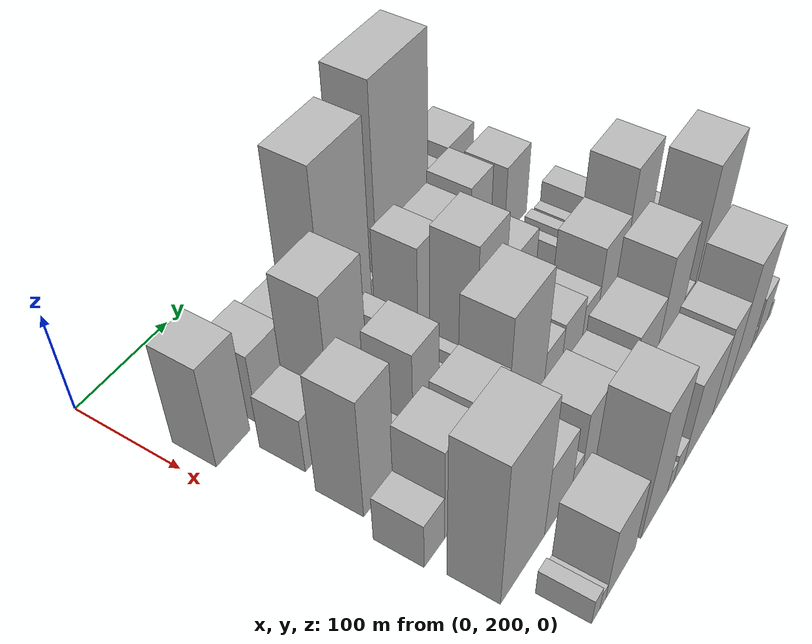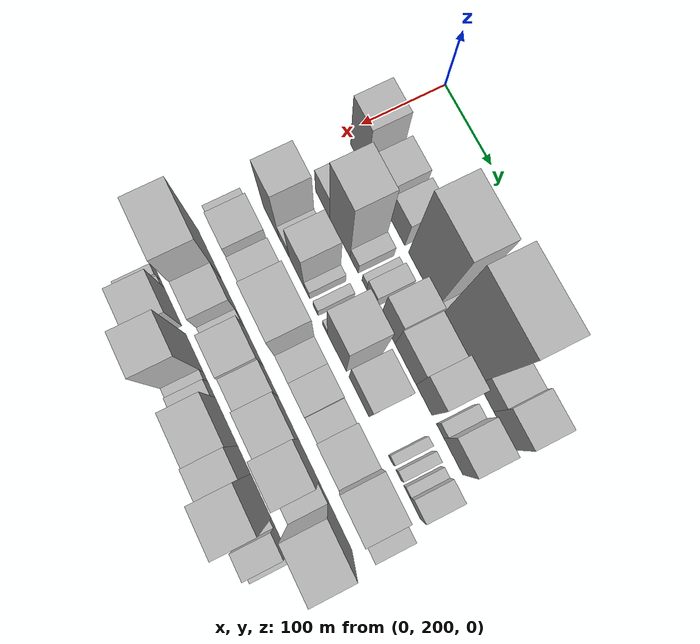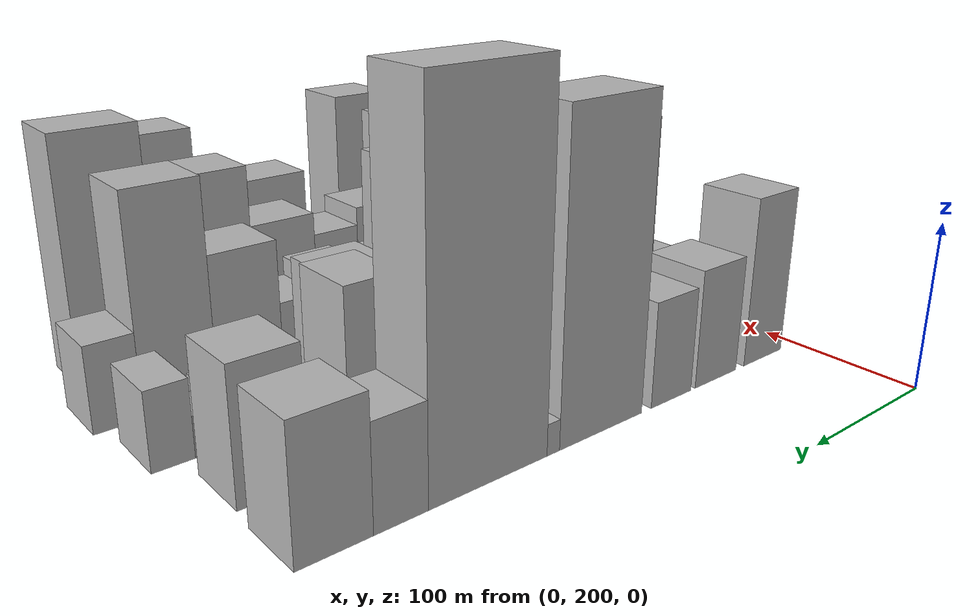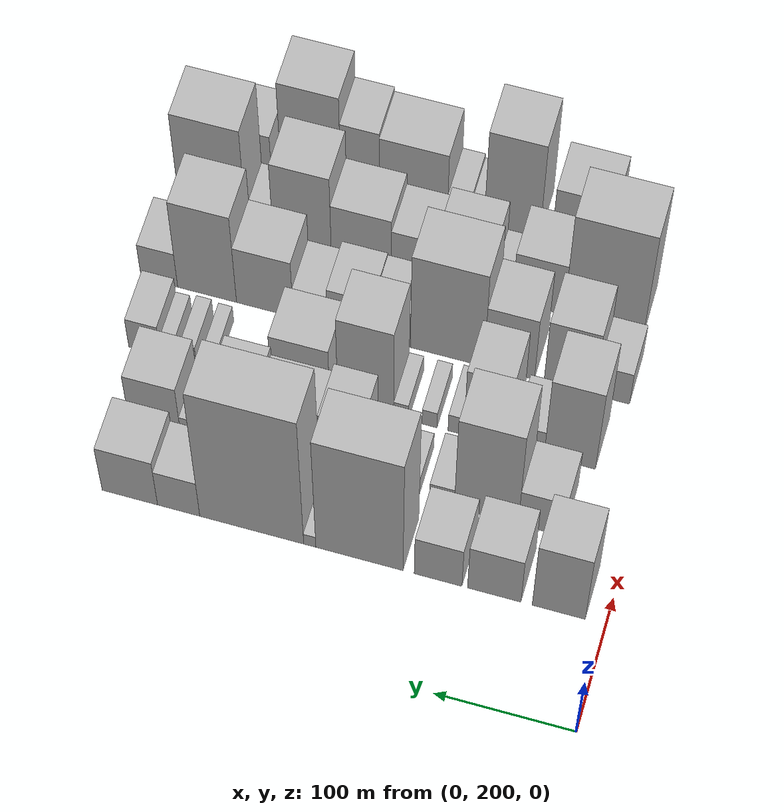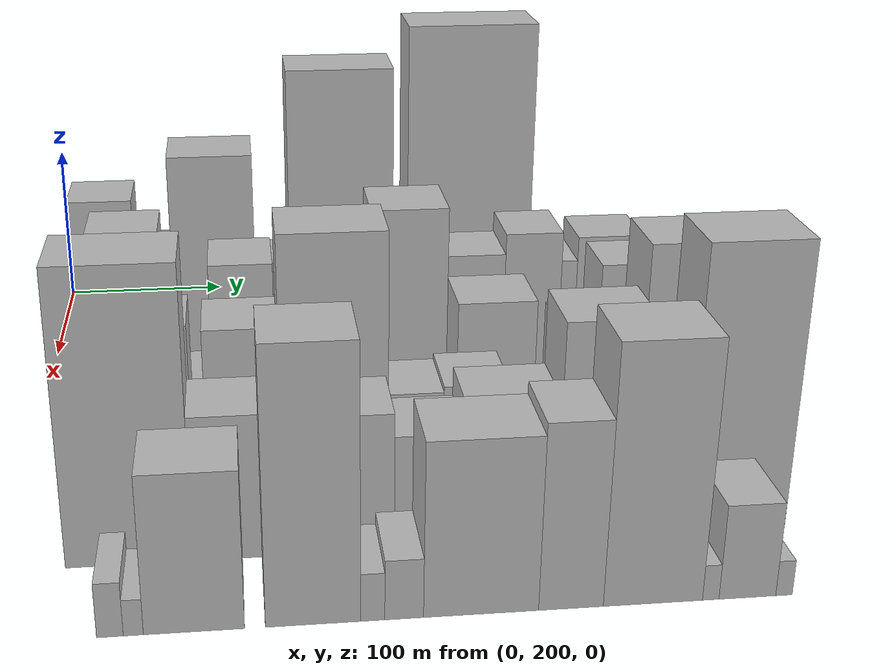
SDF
<sdf version="1.6">
 <world name="default">
  <model name="building_28">
   <static>1</static>
   <pose>100.0000 233.5581 0 0.000000 0.000000 0.000000</pose>
   <link name="link">
    <pose>0 0 52.50 0 0 0</pose>
    <collision name="collision"><geometry><box><size>40.0000 37.5084 105.0000</size></box></geometry></collision>
    <visual name="visual">
     <cast_shadows>0</cast_shadows>
     <geometry><box><size>40.0000 37.5084 105.0000</size></box></geometry>
     <material>
      <script>
       <uri>model://HANNAS_wall/materials/scripts</uri>
       <uri>model://HANNAS_wall/materials/textures</uri>
       <name>vrc/HANNAS_wall</name>
      </script>
     </material>
    </visual>
   </link>
  </model>
  <model name="building_29">
   <static>1</static>
   <pose>100.0000 279.2871 0 0.000000 0.000000 0.000000</pose>
   <link name="link">
    <pose>0 0 36.00 0 0 0</pose>
    <collision name="collision"><geometry><box><size>40.0000 37.9495 72.0000</size></box></geometry></collision>
    <visual name="visual">
     <cast_shadows>0</cast_shadows>
     <geometry><box><size>40.0000 37.9495 72.0000</size></box></geometry>
     <material>
      <script>
       <uri>model://HANNAS_wall/materials/scripts</uri>
       <uri>model://HANNAS_wall/materials/textures</uri>
       <name>vrc/HANNAS_wall</name>
      </script>
     </material>
    </visual>
   </link>
  </model>
  <model name="building_30">
   <static>1</static>
   <pose>100.0000 319.2841 0 0.000000 0.000000 0.000000</pose>
   <link name="link">
    <pose>0 0 31.50 0 0 0</pose>
    <collision name="collision"><geometry><box><size>40.0000 34.0445 63.0000</size></box></geometry></collision>
    <visual name="visual">
     <cast_shadows>0</cast_shadows>
     <geometry><box><size>40.0000 34.0445 63.0000</size></box></geometry>
     <material>
      <script>
       <uri>model://HANNAS_wall/materials/scripts</uri>
       <uri>model://HANNAS_wall/materials/textures</uri>
       <name>vrc/HANNAS_wall</name>
      </script>
     </material>
    </visual>
   </link>
  </model>
  <model name="building_31">
   <static>1</static>
   <pose>100.0000 375.5863 0 0.000000 0.000000 0.000000</pose>
   <link name="link">
    <pose>0 0 90.00 0 0 0</pose>
    <collision name="collision"><geometry><box><size>40.0000 62.5599 180.0000</size></box></geometry></collision>
    <visual name="visual">
     <cast_shadows>0</cast_shadows>
     <geometry><box><size>40.0000 62.5599 180.0000</size></box></geometry>
     <material>
      <script>
       <uri>model://HANNAS_wall/materials/scripts</uri>
       <uri>model://HANNAS_wall/materials/textures</uri>
       <name>vrc/HANNAS_wall</name>
      </script>
     </material>
    </visual>
   </link>
  </model>
  <model name="building_32">
   <static>1</static>
   <pose>100.0000 411.2604 0 0.000000 0.000000 0.000000</pose>
   <link name="link">
    <pose>0 0 9.00 0 0 0</pose>
    <collision name="collision"><geometry><box><size>40.0000 8.7883 18.0000</size></box></geometry></collision>
    <visual name="visual">
     <cast_shadows>0</cast_shadows>
     <geometry><box><size>40.0000 8.7883 18.0000</size></box></geometry>
     <material>
      <script>
       <uri>model://HANNAS_wall/materials/scripts</uri>
       <uri>model://HANNAS_wall/materials/textures</uri>
       <name>vrc/HANNAS_wall</name>
      </script>
     </material>
    </visual>
   </link>
  </model>
  <model name="building_33">
   <static>1</static>
   <pose>100.0000 453.2576 0 0.000000 0.000000 0.000000</pose>
   <link name="link">
    <pose>0 0 102.00 0 0 0</pose>
    <collision name="collision"><geometry><box><size>40.0000 75.2060 204.0000</size></box></geometry></collision>
    <visual name="visual">
     <cast_shadows>0</cast_shadows>
     <geometry><box><size>40.0000 75.2060 204.0000</size></box></geometry>
     <material>
      <script>
       <uri>model://HANNAS_wall/materials/scripts</uri>
       <uri>model://HANNAS_wall/materials/textures</uri>
       <name>vrc/HANNAS_wall</name>
      </script>
     </material>
    </visual>
   </link>
  </model>
  <model name="building_34">
   <static>1</static>
   <pose>100.0000 506.1924 0 0.000000 0.000000 0.000000</pose>
   <link name="link">
    <pose>0 0 28.50 0 0 0</pose>
    <collision name="collision"><geometry><box><size>40.0000 30.6637 57.0000</size></box></geometry></collision>
    <visual name="visual">
     <cast_shadows>0</cast_shadows>
     <geometry><box><size>40.0000 30.6637 57.0000</size></box></geometry>
     <material>
      <script>
       <uri>model://HANNAS_wall/materials/scripts</uri>
       <uri>model://HANNAS_wall/materials/textures</uri>
       <name>vrc/HANNAS_wall</name>
      </script>
     </material>
    </visual>
   </link>
  </model>
  <model name="building_35">
   <static>1</static>
   <pose>100.0000 541.7542 0 0.000000 0.000000 0.000000</pose>
   <link name="link">
    <pose>0 0 36.00 0 0 0</pose>
    <collision name="collision"><geometry><box><size>40.0000 40.4598 72.0000</size></box></geometry></collision>
    <visual name="visual">
     <cast_shadows>0</cast_shadows>
     <geometry><box><size>40.0000 40.4598 72.0000</size></box></geometry>
     <material>
      <script>
       <uri>model://HANNAS_wall/materials/scripts</uri>
       <uri>model://HANNAS_wall/materials/textures</uri>
       <name>vrc/HANNAS_wall</name>
      </script>
     </material>
    </visual>
   </link>
  </model>
  <model name="building_77">
   <static>1</static>
   <pose>155.0000 260.6749 0 0.000000 0.000000 0.000000</pose>
   <link name="link">
    <pose>0 0 28.50 0 0 0</pose>
    <collision name="collision"><geometry><box><size>40.0000 32.5305 57.0000</size></box></geometry></collision>
    <visual name="visual">
     <cast_shadows>0</cast_shadows>
     <geometry><box><size>40.0000 32.5305 57.0000</size></box></geometry>
     <material>
      <script>
       <uri>model://HANNAS_wall/materials/scripts</uri>
       <uri>model://HANNAS_wall/materials/textures</uri>
       <name>vrc/HANNAS_wall</name>
      </script>
     </material>
    </visual>
   </link>
  </model>
  <model name="building_78">
   <static>1</static>
   <pose>155.0000 299.9093 0 0.000000 0.000000 0.000000</pose>
   <link name="link">
    <pose>0 0 73.50 0 0 0</pose>
    <collision name="collision"><geometry><box><size>40.0000 45.9384 147.0000</size></box></geometry></collision>
    <visual name="visual">
     <cast_shadows>0</cast_shadows>
     <geometry><box><size>40.0000 45.9384 147.0000</size></box></geometry>
     <material>
      <script>
       <uri>model://HANNAS_wall/materials/scripts</uri>
       <uri>model://HANNAS_wall/materials/textures</uri>
       <name>vrc/HANNAS_wall</name>
      </script>
     </material>
    </visual>
   </link>
  </model>
  <model name="building_79">
   <static>1</static>
   <pose>155.0000 331.8587 0 0.000000 0.000000 0.000000</pose>
   <link name="link">
    <pose>0 0 15.00 0 0 0</pose>
    <collision name="collision"><geometry><box><size>40.0000 17.9605 30.0000</size></box></geometry></collision>
    <visual name="visual">
     <cast_shadows>0</cast_shadows>
     <geometry><box><size>40.0000 17.9605 30.0000</size></box></geometry>
     <material>
      <script>
       <uri>model://HANNAS_wall/materials/scripts</uri>
       <uri>model://HANNAS_wall/materials/textures</uri>
       <name>vrc/HANNAS_wall</name>
      </script>
     </material>
    </visual>
   </link>
  </model>
  <model name="building_80">
   <static>1</static>
   <pose>155.0000 354.1871 0 0.000000 0.000000 0.000000</pose>
   <link name="link">
    <pose>0 0 12.00 0 0 0</pose>
    <collision name="collision"><geometry><box><size>40.0000 10.6962 24.0000</size></box></geometry></collision>
    <visual name="visual">
     <cast_shadows>0</cast_shadows>
     <geometry><box><size>40.0000 10.6962 24.0000</size></box></geometry>
     <material>
      <script>
       <uri>model://HANNAS_wall/materials/scripts</uri>
       <uri>model://HANNAS_wall/materials/textures</uri>
       <name>vrc/HANNAS_wall</name>
      </script>
     </material>
    </visual>
   </link>
  </model>
  <model name="building_81">
   <static>1</static>
   <pose>155.0000 369.3860 0 0.000000 0.000000 0.000000</pose>
   <link name="link">
    <pose>0 0 19.50 0 0 0</pose>
    <collision name="collision"><geometry><box><size>40.0000 19.7015 39.0000</size></box></geometry></collision>
    <visual name="visual">
     <cast_shadows>0</cast_shadows>
     <geometry><box><size>40.0000 19.7015 39.0000</size></box></geometry>
     <material>
      <script>
       <uri>model://HANNAS_wall/materials/scripts</uri>
       <uri>model://HANNAS_wall/materials/textures</uri>
       <name>vrc/HANNAS_wall</name>
      </script>
     </material>
    </visual>
   </link>
  </model>
  <model name="building_82">
   <static>1</static>
   <pose>155.0000 404.8058 0 0.000000 0.000000 0.000000</pose>
   <link name="link">
    <pose>0 0 48.00 0 0 0</pose>
    <collision name="collision"><geometry><box><size>40.0000 31.1381 96.0000</size></box></geometry></collision>
    <visual name="visual">
     <cast_shadows>0</cast_shadows>
     <geometry><box><size>40.0000 31.1381 96.0000</size></box></geometry>
     <material>
      <script>
       <uri>model://HANNAS_wall/materials/scripts</uri>
       <uri>model://HANNAS_wall/materials/textures</uri>
       <name>vrc/HANNAS_wall</name>
      </script>
     </material>
    </visual>
   </link>
  </model>
  <model name="building_83">
   <static>1</static>
   <pose>155.0000 442.7776 0 0.000000 0.000000 0.000000</pose>
   <link name="link">
    <pose>0 0 42.00 0 0 0</pose>
    <collision name="collision"><geometry><box><size>40.0000 44.8055 84.0000</size></box></geometry></collision>
    <visual name="visual">
     <cast_shadows>0</cast_shadows>
     <geometry><box><size>40.0000 44.8055 84.0000</size></box></geometry>
     <material>
      <script>
       <uri>model://HANNAS_wall/materials/scripts</uri>
       <uri>model://HANNAS_wall/materials/textures</uri>
       <name>vrc/HANNAS_wall</name>
      </script>
     </material>
    </visual>
   </link>
  </model>
  <model name="building_84">
   <static>1</static>
   <pose>155.0000 481.5834 0 0.000000 0.000000 0.000000</pose>
   <link name="link">
    <pose>0 0 48.00 0 0 0</pose>
    <collision name="collision"><geometry><box><size>40.0000 32.8061 96.0000</size></box></geometry></collision>
    <visual name="visual">
     <cast_shadows>0</cast_shadows>
     <geometry><box><size>40.0000 32.8061 96.0000</size></box></geometry>
     <material>
      <script>
       <uri>model://HANNAS_wall/materials/scripts</uri>
       <uri>model://HANNAS_wall/materials/textures</uri>
       <name>vrc/HANNAS_wall</name>
      </script>
     </material>
    </visual>
   </link>
  </model>
  <model name="building_85">
   <static>1</static>
   <pose>155.0000 514.5166 0 0.000000 0.000000 0.000000</pose>
   <link name="link">
    <pose>0 0 15.00 0 0 0</pose>
    <collision name="collision"><geometry><box><size>40.0000 15.0602 30.0000</size></box></geometry></collision>
    <visual name="visual">
     <cast_shadows>0</cast_shadows>
     <geometry><box><size>40.0000 15.0602 30.0000</size></box></geometry>
     <material>
      <script>
       <uri>model://HANNAS_wall/materials/scripts</uri>
       <uri>model://HANNAS_wall/materials/textures</uri>
       <name>vrc/HANNAS_wall</name>
      </script>
     </material>
    </visual>
   </link>
  </model>
  <model name="building_86">
   <static>1</static>
   <pose>155.0000 541.0794 0 0.000000 0.000000 0.000000</pose>
   <link name="link">
    <pose>0 0 37.50 0 0 0</pose>
    <collision name="collision"><geometry><box><size>40.0000 38.0653 75.0000</size></box></geometry></collision>
    <visual name="visual">
     <cast_shadows>0</cast_shadows>
     <geometry><box><size>40.0000 38.0653 75.0000</size></box></geometry>
     <material>
      <script>
       <uri>model://HANNAS_wall/materials/scripts</uri>
       <uri>model://HANNAS_wall/materials/textures</uri>
       <name>vrc/HANNAS_wall</name>
      </script>
     </material>
    </visual>
   </link>
  </model>
  <model name="building_132">
   <static>1</static>
   <pose>210.0000 254.4476 0 0.000000 0.000000 0.000000</pose>
   <link name="link">
    <pose>0 0 61.50 0 0 0</pose>
    <collision name="collision"><geometry><box><size>40.0000 37.0201 123.0000</size></box></geometry></collision>
    <visual name="visual">
     <cast_shadows>0</cast_shadows>
     <geometry><box><size>40.0000 37.0201 123.0000</size></box></geometry>
     <material>
      <script>
       <uri>model://HANNAS_wall/materials/scripts</uri>
       <uri>model://HANNAS_wall/materials/textures</uri>
       <name>vrc/HANNAS_wall</name>
      </script>
     </material>
    </visual>
   </link>
  </model>
  <model name="building_133">
   <static>1</static>
   <pose>210.0000 283.9066 0 0.000000 0.000000 0.000000</pose>
   <link name="link">
    <pose>0 0 19.50 0 0 0</pose>
    <collision name="collision"><geometry><box><size>40.0000 21.8980 39.0000</size></box></geometry></collision>
    <visual name="visual">
     <cast_shadows>0</cast_shadows>
     <geometry><box><size>40.0000 21.8980 39.0000</size></box></geometry>
     <material>
      <script>
       <uri>model://HANNAS_wall/materials/scripts</uri>
       <uri>model://HANNAS_wall/materials/textures</uri>
       <name>vrc/HANNAS_wall</name>
      </script>
     </material>
    </visual>
   </link>
  </model>
  <model name="building_134">
   <static>1</static>
   <pose>210.0000 314.5106 0 0.000000 0.000000 0.000000</pose>
   <link name="link">
    <pose>0 0 52.50 0 0 0</pose>
    <collision name="collision"><geometry><box><size>40.0000 33.3100 105.0000</size></box></geometry></collision>
    <visual name="visual">
     <cast_shadows>0</cast_shadows>
     <geometry><box><size>40.0000 33.3100 105.0000</size></box></geometry>
     <material>
      <script>
       <uri>model://HANNAS_wall/materials/scripts</uri>
       <uri>model://HANNAS_wall/materials/textures</uri>
       <name>vrc/HANNAS_wall</name>
      </script>
     </material>
    </visual>
   </link>
  </model>
  <model name="building_135">
   <static>1</static>
   <pose>210.0000 336.9392 0 0.000000 0.000000 0.000000</pose>
   <link name="link">
    <pose>0 0 13.50 0 0 0</pose>
    <collision name="collision"><geometry><box><size>40.0000 11.5473 27.0000</size></box></geometry></collision>
    <visual name="visual">
     <cast_shadows>0</cast_shadows>
     <geometry><box><size>40.0000 11.5473 27.0000</size></box></geometry>
     <material>
      <script>
       <uri>model://HANNAS_wall/materials/scripts</uri>
       <uri>model://HANNAS_wall/materials/textures</uri>
       <name>vrc/HANNAS_wall</name>
      </script>
     </material>
    </visual>
   </link>
  </model>
  <model name="building_136">
   <static>1</static>
   <pose>210.0000 356.1967 0 0.000000 0.000000 0.000000</pose>
   <link name="link">
    <pose>0 0 12.00 0 0 0</pose>
    <collision name="collision"><geometry><box><size>40.0000 10.9678 24.0000</size></box></geometry></collision>
    <visual name="visual">
     <cast_shadows>0</cast_shadows>
     <geometry><box><size>40.0000 10.9678 24.0000</size></box></geometry>
     <material>
      <script>
       <uri>model://HANNAS_wall/materials/scripts</uri>
       <uri>model://HANNAS_wall/materials/textures</uri>
       <name>vrc/HANNAS_wall</name>
      </script>
     </material>
    </visual>
   </link>
  </model>
  <model name="building_137">
   <static>1</static>
   <pose>210.0000 377.0531 0 0.000000 0.000000 0.000000</pose>
   <link name="link">
    <pose>0 0 12.00 0 0 0</pose>
    <collision name="collision"><geometry><box><size>40.0000 10.7451 24.0000</size></box></geometry></collision>
    <visual name="visual">
     <cast_shadows>0</cast_shadows>
     <geometry><box><size>40.0000 10.7451 24.0000</size></box></geometry>
     <material>
      <script>
       <uri>model://HANNAS_wall/materials/scripts</uri>
       <uri>model://HANNAS_wall/materials/textures</uri>
       <name>vrc/HANNAS_wall</name>
      </script>
     </material>
    </visual>
   </link>
  </model>
  <model name="building_138">
   <static>1</static>
   <pose>210.0000 402.8929 0 0.000000 0.000000 0.000000</pose>
   <link name="link">
    <pose>0 0 66.00 0 0 0</pose>
    <collision name="collision"><geometry><box><size>40.0000 40.9345 132.0000</size></box></geometry></collision>
    <visual name="visual">
     <cast_shadows>0</cast_shadows>
     <geometry><box><size>40.0000 40.9345 132.0000</size></box></geometry>
     <material>
      <script>
       <uri>model://HANNAS_wall/materials/scripts</uri>
       <uri>model://HANNAS_wall/materials/textures</uri>
       <name>vrc/HANNAS_wall</name>
      </script>
     </material>
    </visual>
   </link>
  </model>
  <model name="building_139">
   <static>1</static>
   <pose>210.0000 450.8262 0 0.000000 0.000000 0.000000</pose>
   <link name="link">
    <pose>0 0 39.00 0 0 0</pose>
    <collision name="collision"><geometry><box><size>40.0000 42.9320 78.0000</size></box></geometry></collision>
    <visual name="visual">
     <cast_shadows>0</cast_shadows>
     <geometry><box><size>40.0000 42.9320 78.0000</size></box></geometry>
     <material>
      <script>
       <uri>model://HANNAS_wall/materials/scripts</uri>
       <uri>model://HANNAS_wall/materials/textures</uri>
       <name>vrc/HANNAS_wall</name>
      </script>
     </material>
    </visual>
   </link>
  </model>
  <model name="building_140">
   <static>1</static>
   <pose>210.0000 517.6575 0 0.000000 0.000000 0.000000</pose>
   <link name="link">
    <pose>0 0 12.00 0 0 0</pose>
    <collision name="collision"><geometry><box><size>40.0000 10.2436 24.0000</size></box></geometry></collision>
    <visual name="visual">
     <cast_shadows>0</cast_shadows>
     <geometry><box><size>40.0000 10.2436 24.0000</size></box></geometry>
     <material>
      <script>
       <uri>model://HANNAS_wall/materials/scripts</uri>
       <uri>model://HANNAS_wall/materials/textures</uri>
       <name>vrc/HANNAS_wall</name>
      </script>
     </material>
    </visual>
   </link>
  </model>
  <model name="building_141">
   <static>1</static>
   <pose>210.0000 533.3915 0 0.000000 0.000000 0.000000</pose>
   <link name="link">
    <pose>0 0 13.50 0 0 0</pose>
    <collision name="collision"><geometry><box><size>40.0000 11.2243 27.0000</size></box></geometry></collision>
    <visual name="visual">
     <cast_shadows>0</cast_shadows>
     <geometry><box><size>40.0000 11.2243 27.0000</size></box></geometry>
     <material>
      <script>
       <uri>model://HANNAS_wall/materials/scripts</uri>
       <uri>model://HANNAS_wall/materials/textures</uri>
       <name>vrc/HANNAS_wall</name>
      </script>
     </material>
    </visual>
   </link>
  </model>
  <model name="building_142">
   <static>1</static>
   <pose>210.0000 549.3430 0 0.000000 0.000000 0.000000</pose>
   <link name="link">
    <pose>0 0 12.00 0 0 0</pose>
    <collision name="collision"><geometry><box><size>40.0000 10.6787 24.0000</size></box></geometry></collision>
    <visual name="visual">
     <cast_shadows>0</cast_shadows>
     <geometry><box><size>40.0000 10.6787 24.0000</size></box></geometry>
     <material>
      <script>
       <uri>model://HANNAS_wall/materials/scripts</uri>
       <uri>model://HANNAS_wall/materials/textures</uri>
       <name>vrc/HANNAS_wall</name>
      </script>
     </material>
    </visual>
   </link>
  </model>
  <model name="building_143">
   <static>1</static>
   <pose>210.0000 566.3894 0 0.000000 0.000000 0.000000</pose>
   <link name="link">
    <pose>0 0 22.50 0 0 0</pose>
    <collision name="collision"><geometry><box><size>40.0000 23.4141 45.0000</size></box></geometry></collision>
    <visual name="visual">
     <cast_shadows>0</cast_shadows>
     <geometry><box><size>40.0000 23.4141 45.0000</size></box></geometry>
     <material>
      <script>
       <uri>model://HANNAS_wall/materials/scripts</uri>
       <uri>model://HANNAS_wall/materials/textures</uri>
       <name>vrc/HANNAS_wall</name>
      </script>
     </material>
    </visual>
   </link>
  </model>
  <model name="building_185">
   <static>1</static>
   <pose>265.0000 237.6852 0 0.000000 0.000000 0.000000</pose>
   <link name="link">
    <pose>0 0 24.00 0 0 0</pose>
    <collision name="collision"><geometry><box><size>40.0000 24.9967 48.0000</size></box></geometry></collision>
    <visual name="visual">
     <cast_shadows>0</cast_shadows>
     <geometry><box><size>40.0000 24.9967 48.0000</size></box></geometry>
     <material>
      <script>
       <uri>model://HANNAS_wall/materials/scripts</uri>
       <uri>model://HANNAS_wall/materials/textures</uri>
       <name>vrc/HANNAS_wall</name>
      </script>
     </material>
    </visual>
   </link>
  </model>
  <model name="building_186">
   <static>1</static>
   <pose>265.0000 268.8765 0 0.000000 0.000000 0.000000</pose>
   <link name="link">
    <pose>0 0 48.00 0 0 0</pose>
    <collision name="collision"><geometry><box><size>40.0000 37.3858 96.0000</size></box></geometry></collision>
    <visual name="visual">
     <cast_shadows>0</cast_shadows>
     <geometry><box><size>40.0000 37.3858 96.0000</size></box></geometry>
     <material>
      <script>
       <uri>model://HANNAS_wall/materials/scripts</uri>
       <uri>model://HANNAS_wall/materials/textures</uri>
       <name>vrc/HANNAS_wall</name>
      </script>
     </material>
    </visual>
   </link>
  </model>
  <model name="building_187">
   <static>1</static>
   <pose>265.0000 313.0178 0 0.000000 0.000000 0.000000</pose>
   <link name="link">
    <pose>0 0 46.50 0 0 0</pose>
    <collision name="collision"><geometry><box><size>40.0000 36.8970 93.0000</size></box></geometry></collision>
    <visual name="visual">
     <cast_shadows>0</cast_shadows>
     <geometry><box><size>40.0000 36.8970 93.0000</size></box></geometry>
     <material>
      <script>
       <uri>model://HANNAS_wall/materials/scripts</uri>
       <uri>model://HANNAS_wall/materials/textures</uri>
       <name>vrc/HANNAS_wall</name>
      </script>
     </material>
    </visual>
   </link>
  </model>
  <model name="building_188">
   <static>1</static>
   <pose>265.0000 358.6007 0 0.000000 0.000000 0.000000</pose>
   <link name="link">
    <pose>0 0 70.50 0 0 0</pose>
    <collision name="collision"><geometry><box><size>40.0000 54.2688 141.0000</size></box></geometry></collision>
    <visual name="visual">
     <cast_shadows>0</cast_shadows>
     <geometry><box><size>40.0000 54.2688 141.0000</size></box></geometry>
     <material>
      <script>
       <uri>model://HANNAS_wall/materials/scripts</uri>
       <uri>model://HANNAS_wall/materials/textures</uri>
       <name>vrc/HANNAS_wall</name>
      </script>
     </material>
    </visual>
   </link>
  </model>
  <model name="building_189">
   <static>1</static>
   <pose>265.0000 399.7635 0 0.000000 0.000000 0.000000</pose>
   <link name="link">
    <pose>0 0 27.00 0 0 0</pose>
    <collision name="collision"><geometry><box><size>40.0000 28.0569 54.0000</size></box></geometry></collision>
    <visual name="visual">
     <cast_shadows>0</cast_shadows>
     <geometry><box><size>40.0000 28.0569 54.0000</size></box></geometry>
     <material>
      <script>
       <uri>model://HANNAS_wall/materials/scripts</uri>
       <uri>model://HANNAS_wall/materials/textures</uri>
       <name>vrc/HANNAS_wall</name>
      </script>
     </material>
    </visual>
   </link>
  </model>
  <model name="building_190">
   <static>1</static>
   <pose>265.0000 430.5812 0 0.000000 0.000000 0.000000</pose>
   <link name="link">
    <pose>0 0 28.50 0 0 0</pose>
    <collision name="collision"><geometry><box><size>40.0000 33.5785 57.0000</size></box></geometry></collision>
    <visual name="visual">
     <cast_shadows>0</cast_shadows>
     <geometry><box><size>40.0000 33.5785 57.0000</size></box></geometry>
     <material>
      <script>
       <uri>model://HANNAS_wall/materials/scripts</uri>
       <uri>model://HANNAS_wall/materials/textures</uri>
       <name>vrc/HANNAS_wall</name>
      </script>
     </material>
    </visual>
   </link>
  </model>
  <model name="building_191">
   <static>1</static>
   <pose>265.0000 460.0283 0 0.000000 0.000000 0.000000</pose>
   <link name="link">
    <pose>0 0 22.50 0 0 0</pose>
    <collision name="collision"><geometry><box><size>40.0000 25.3157 45.0000</size></box></geometry></collision>
    <visual name="visual">
     <cast_shadows>0</cast_shadows>
     <geometry><box><size>40.0000 25.3157 45.0000</size></box></geometry>
     <material>
      <script>
       <uri>model://HANNAS_wall/materials/scripts</uri>
       <uri>model://HANNAS_wall/materials/textures</uri>
       <name>vrc/HANNAS_wall</name>
      </script>
     </material>
    </visual>
   </link>
  </model>
  <model name="building_192">
   <static>1</static>
   <pose>265.0000 493.8520 0 0.000000 0.000000 0.000000</pose>
   <link name="link">
    <pose>0 0 42.00 0 0 0</pose>
    <collision name="collision"><geometry><box><size>40.0000 42.3318 84.0000</size></box></geometry></collision>
    <visual name="visual">
     <cast_shadows>0</cast_shadows>
     <geometry><box><size>40.0000 42.3318 84.0000</size></box></geometry>
     <material>
      <script>
       <uri>model://HANNAS_wall/materials/scripts</uri>
       <uri>model://HANNAS_wall/materials/textures</uri>
       <name>vrc/HANNAS_wall</name>
      </script>
     </material>
    </visual>
   </link>
  </model>
  <model name="building_193">
   <static>1</static>
   <pose>265.0000 537.1006 0 0.000000 0.000000 0.000000</pose>
   <link name="link">
    <pose>0 0 64.50 0 0 0</pose>
    <collision name="collision"><geometry><box><size>40.0000 44.1654 129.0000</size></box></geometry></collision>
    <visual name="visual">
     <cast_shadows>0</cast_shadows>
     <geometry><box><size>40.0000 44.1654 129.0000</size></box></geometry>
     <material>
      <script>
       <uri>model://HANNAS_wall/materials/scripts</uri>
       <uri>model://HANNAS_wall/materials/textures</uri>
       <name>vrc/HANNAS_wall</name>
      </script>
     </material>
    </visual>
   </link>
  </model>
  <model name="building_194">
   <static>1</static>
   <pose>265.0000 572.9187 0 0.000000 0.000000 0.000000</pose>
   <link name="link">
    <pose>0 0 25.50 0 0 0</pose>
    <collision name="collision"><geometry><box><size>40.0000 27.4708 51.0000</size></box></geometry></collision>
    <visual name="visual">
     <cast_shadows>0</cast_shadows>
     <geometry><box><size>40.0000 27.4708 51.0000</size></box></geometry>
     <material>
      <script>
       <uri>model://HANNAS_wall/materials/scripts</uri>
       <uri>model://HANNAS_wall/materials/textures</uri>
       <name>vrc/HANNAS_wall</name>
      </script>
     </material>
    </visual>
   </link>
  </model>
  <model name="building_238">
   <static>1</static>
   <pose>320.0000 258.0376 0 0.000000 0.000000 0.000000</pose>
   <link name="link">
    <pose>0 0 75.00 0 0 0</pose>
    <collision name="collision"><geometry><box><size>40.0000 58.5442 150.0000</size></box></geometry></collision>
    <visual name="visual">
     <cast_shadows>0</cast_shadows>
     <geometry><box><size>40.0000 58.5442 150.0000</size></box></geometry>
     <material>
      <script>
       <uri>model://HANNAS_wall/materials/scripts</uri>
       <uri>model://HANNAS_wall/materials/textures</uri>
       <name>vrc/HANNAS_wall</name>
      </script>
     </material>
    </visual>
   </link>
  </model>
  <model name="building_239">
   <static>1</static>
   <pose>320.0000 306.3090 0 0.000000 0.000000 0.000000</pose>
   <link name="link">
    <pose>0 0 37.50 0 0 0</pose>
    <collision name="collision"><geometry><box><size>40.0000 37.9987 75.0000</size></box></geometry></collision>
    <visual name="visual">
     <cast_shadows>0</cast_shadows>
     <geometry><box><size>40.0000 37.9987 75.0000</size></box></geometry>
     <material>
      <script>
       <uri>model://HANNAS_wall/materials/scripts</uri>
       <uri>model://HANNAS_wall/materials/textures</uri>
       <name>vrc/HANNAS_wall</name>
      </script>
     </material>
    </visual>
   </link>
  </model>
  <model name="building_240">
   <static>1</static>
   <pose>320.0000 332.8700 0 0.000000 0.000000 0.000000</pose>
   <link name="link">
    <pose>0 0 15.00 0 0 0</pose>
    <collision name="collision"><geometry><box><size>40.0000 15.1233 30.0000</size></box></geometry></collision>
    <visual name="visual">
     <cast_shadows>0</cast_shadows>
     <geometry><box><size>40.0000 15.1233 30.0000</size></box></geometry>
     <material>
      <script>
       <uri>model://HANNAS_wall/materials/scripts</uri>
       <uri>model://HANNAS_wall/materials/textures</uri>
       <name>vrc/HANNAS_wall</name>
      </script>
     </material>
    </visual>
   </link>
  </model>
  <model name="building_241">
   <static>1</static>
   <pose>320.0000 361.4944 0 0.000000 0.000000 0.000000</pose>
   <link name="link">
    <pose>0 0 36.00 0 0 0</pose>
    <collision name="collision"><geometry><box><size>40.0000 42.1255 72.0000</size></box></geometry></collision>
    <visual name="visual">
     <cast_shadows>0</cast_shadows>
     <geometry><box><size>40.0000 42.1255 72.0000</size></box></geometry>
     <material>
      <script>
       <uri>model://HANNAS_wall/materials/scripts</uri>
       <uri>model://HANNAS_wall/materials/textures</uri>
       <name>vrc/HANNAS_wall</name>
      </script>
     </material>
    </visual>
   </link>
  </model>
  <model name="building_242">
   <static>1</static>
   <pose>320.0000 399.0304 0 0.000000 0.000000 0.000000</pose>
   <link name="link">
    <pose>0 0 30.00 0 0 0</pose>
    <collision name="collision"><geometry><box><size>40.0000 32.9466 60.0000</size></box></geometry></collision>
    <visual name="visual">
     <cast_shadows>0</cast_shadows>
     <geometry><box><size>40.0000 32.9466 60.0000</size></box></geometry>
     <material>
      <script>
       <uri>model://HANNAS_wall/materials/scripts</uri>
       <uri>model://HANNAS_wall/materials/textures</uri>
       <name>vrc/HANNAS_wall</name>
      </script>
     </material>
    </visual>
   </link>
  </model>
  <model name="building_243">
   <static>1</static>
   <pose>320.0000 437.9953 0 0.000000 0.000000 0.000000</pose>
   <link name="link">
    <pose>0 0 37.50 0 0 0</pose>
    <collision name="collision"><geometry><box><size>40.0000 44.9830 75.0000</size></box></geometry></collision>
    <visual name="visual">
     <cast_shadows>0</cast_shadows>
     <geometry><box><size>40.0000 44.9830 75.0000</size></box></geometry>
     <material>
      <script>
       <uri>model://HANNAS_wall/materials/scripts</uri>
       <uri>model://HANNAS_wall/materials/textures</uri>
       <name>vrc/HANNAS_wall</name>
      </script>
     </material>
    </visual>
   </link>
  </model>
  <model name="building_244">
   <static>1</static>
   <pose>320.0000 482.2898 0 0.000000 0.000000 0.000000</pose>
   <link name="link">
    <pose>0 0 57.00 0 0 0</pose>
    <collision name="collision"><geometry><box><size>40.0000 43.6061 114.0000</size></box></geometry></collision>
    <visual name="visual">
     <cast_shadows>0</cast_shadows>
     <geometry><box><size>40.0000 43.6061 114.0000</size></box></geometry>
     <material>
      <script>
       <uri>model://HANNAS_wall/materials/scripts</uri>
       <uri>model://HANNAS_wall/materials/textures</uri>
       <name>vrc/HANNAS_wall</name>
      </script>
     </material>
    </visual>
   </link>
  </model>
  <model name="building_245">
   <static>1</static>
   <pose>320.0000 514.0843 0 0.000000 0.000000 0.000000</pose>
   <link name="link">
    <pose>0 0 18.00 0 0 0</pose>
    <collision name="collision"><geometry><box><size>40.0000 19.9829 36.0000</size></box></geometry></collision>
    <visual name="visual">
     <cast_shadows>0</cast_shadows>
     <geometry><box><size>40.0000 19.9829 36.0000</size></box></geometry>
     <material>
      <script>
       <uri>model://HANNAS_wall/materials/scripts</uri>
       <uri>model://HANNAS_wall/materials/textures</uri>
       <name>vrc/HANNAS_wall</name>
      </script>
     </material>
    </visual>
   </link>
  </model>
  <model name="building_246">
   <static>1</static>
   <pose>320.0000 549.1203 0 0.000000 0.000000 0.000000</pose>
   <link name="link">
    <pose>0 0 75.00 0 0 0</pose>
    <collision name="collision"><geometry><box><size>40.0000 50.0892 150.0000</size></box></geometry></collision>
    <visual name="visual">
     <cast_shadows>0</cast_shadows>
     <geometry><box><size>40.0000 50.0892 150.0000</size></box></geometry>
     <material>
      <script>
       <uri>model://HANNAS_wall/materials/scripts</uri>
       <uri>model://HANNAS_wall/materials/textures</uri>
       <name>vrc/HANNAS_wall</name>
      </script>
     </material>
    </visual>
   </link>
  </model>
  <model name="building_287">
   <static>1</static>
   <pose>375.0000 253.1263 0 0.000000 0.000000 0.000000</pose>
   <link name="link">
    <pose>0 0 13.50 0 0 0</pose>
    <collision name="collision"><geometry><box><size>40.0000 11.3114 27.0000</size></box></geometry></collision>
    <visual name="visual">
     <cast_shadows>0</cast_shadows>
     <geometry><box><size>40.0000 11.3114 27.0000</size></box></geometry>
     <material>
      <script>
       <uri>model://HANNAS_wall/materials/scripts</uri>
       <uri>model://HANNAS_wall/materials/textures</uri>
       <name>vrc/HANNAS_wall</name>
      </script>
     </material>
    </visual>
   </link>
  </model>
  <model name="building_288">
   <static>1</static>
   <pose>375.0000 263.0697 0 0.000000 0.000000 0.000000</pose>
   <link name="link">
    <pose>0 0 9.00 0 0 0</pose>
    <collision name="collision"><geometry><box><size>40.0000 8.5753 18.0000</size></box></geometry></collision>
    <visual name="visual">
     <cast_shadows>0</cast_shadows>
     <geometry><box><size>40.0000 8.5753 18.0000</size></box></geometry>
     <material>
      <script>
       <uri>model://HANNAS_wall/materials/scripts</uri>
       <uri>model://HANNAS_wall/materials/textures</uri>
       <name>vrc/HANNAS_wall</name>
      </script>
     </material>
    </visual>
   </link>
  </model>
  <model name="building_289">
   <static>1</static>
   <pose>375.0000 289.0735 0 0.000000 0.000000 0.000000</pose>
   <link name="link">
    <pose>0 0 39.00 0 0 0</pose>
    <collision name="collision"><geometry><box><size>40.0000 43.4324 78.0000</size></box></geometry></collision>
    <visual name="visual">
     <cast_shadows>0</cast_shadows>
     <geometry><box><size>40.0000 43.4324 78.0000</size></box></geometry>
     <material>
      <script>
       <uri>model://HANNAS_wall/materials/scripts</uri>
       <uri>model://HANNAS_wall/materials/textures</uri>
       <name>vrc/HANNAS_wall</name>
      </script>
     </material>
    </visual>
   </link>
  </model>
  <model name="building_290">
   <static>1</static>
   <pose>375.0000 340.6173 0 0.000000 0.000000 0.000000</pose>
   <link name="link">
    <pose>0 0 67.50 0 0 0</pose>
    <collision name="collision"><geometry><box><size>40.0000 41.6552 135.0000</size></box></geometry></collision>
    <visual name="visual">
     <cast_shadows>0</cast_shadows>
     <geometry><box><size>40.0000 41.6552 135.0000</size></box></geometry>
     <material>
      <script>
       <uri>model://HANNAS_wall/materials/scripts</uri>
       <uri>model://HANNAS_wall/materials/textures</uri>
       <name>vrc/HANNAS_wall</name>
      </script>
     </material>
    </visual>
   </link>
  </model>
  <model name="building_291">
   <static>1</static>
   <pose>375.0000 366.6941 0 0.000000 0.000000 0.000000</pose>
   <link name="link">
    <pose>0 0 12.00 0 0 0</pose>
    <collision name="collision"><geometry><box><size>40.0000 10.4984 24.0000</size></box></geometry></collision>
    <visual name="visual">
     <cast_shadows>0</cast_shadows>
     <geometry><box><size>40.0000 10.4984 24.0000</size></box></geometry>
     <material>
      <script>
       <uri>model://HANNAS_wall/materials/scripts</uri>
       <uri>model://HANNAS_wall/materials/textures</uri>
       <name>vrc/HANNAS_wall</name>
      </script>
     </material>
    </visual>
   </link>
  </model>
  <model name="building_292">
   <static>1</static>
   <pose>375.0000 380.4914 0 0.000000 0.000000 0.000000</pose>
   <link name="link">
    <pose>0 0 15.00 0 0 0</pose>
    <collision name="collision"><geometry><box><size>40.0000 17.0962 30.0000</size></box></geometry></collision>
    <visual name="visual">
     <cast_shadows>0</cast_shadows>
     <geometry><box><size>40.0000 17.0962 30.0000</size></box></geometry>
     <material>
      <script>
       <uri>model://HANNAS_wall/materials/scripts</uri>
       <uri>model://HANNAS_wall/materials/textures</uri>
       <name>vrc/HANNAS_wall</name>
      </script>
     </material>
    </visual>
   </link>
  </model>
  <model name="building_293">
   <static>1</static>
   <pose>375.0000 414.7004 0 0.000000 0.000000 0.000000</pose>
   <link name="link">
    <pose>0 0 43.50 0 0 0</pose>
    <collision name="collision"><geometry><box><size>40.0000 51.3217 87.0000</size></box></geometry></collision>
    <visual name="visual">
     <cast_shadows>0</cast_shadows>
     <geometry><box><size>40.0000 51.3217 87.0000</size></box></geometry>
     <material>
      <script>
       <uri>model://HANNAS_wall/materials/scripts</uri>
       <uri>model://HANNAS_wall/materials/textures</uri>
       <name>vrc/HANNAS_wall</name>
      </script>
     </material>
    </visual>
   </link>
  </model>
  <model name="building_294">
   <static>1</static>
   <pose>375.0000 454.9819 0 0.000000 0.000000 0.000000</pose>
   <link name="link">
    <pose>0 0 46.50 0 0 0</pose>
    <collision name="collision"><geometry><box><size>40.0000 29.2415 93.0000</size></box></geometry></collision>
    <visual name="visual">
     <cast_shadows>0</cast_shadows>
     <geometry><box><size>40.0000 29.2415 93.0000</size></box></geometry>
     <material>
      <script>
       <uri>model://HANNAS_wall/materials/scripts</uri>
       <uri>model://HANNAS_wall/materials/textures</uri>
       <name>vrc/HANNAS_wall</name>
      </script>
     </material>
    </visual>
   </link>
  </model>
  <model name="building_295">
   <static>1</static>
   <pose>375.0000 492.2559 0 0.000000 0.000000 0.000000</pose>
   <link name="link">
    <pose>0 0 64.50 0 0 0</pose>
    <collision name="collision"><geometry><box><size>40.0000 45.3065 129.0000</size></box></geometry></collision>
    <visual name="visual">
     <cast_shadows>0</cast_shadows>
     <geometry><box><size>40.0000 45.3065 129.0000</size></box></geometry>
     <material>
      <script>
       <uri>model://HANNAS_wall/materials/scripts</uri>
       <uri>model://HANNAS_wall/materials/textures</uri>
       <name>vrc/HANNAS_wall</name>
      </script>
     </material>
    </visual>
   </link>
  </model>
  <model name="building_296">
   <static>1</static>
   <pose>375.0000 518.7042 0 0.000000 0.000000 0.000000</pose>
   <link name="link">
    <pose>0 0 9.00 0 0 0</pose>
    <collision name="collision"><geometry><box><size>40.0000 7.5901 18.0000</size></box></geometry></collision>
    <visual name="visual">
     <cast_shadows>0</cast_shadows>
     <geometry><box><size>40.0000 7.5901 18.0000</size></box></geometry>
     <material>
      <script>
       <uri>model://HANNAS_wall/materials/scripts</uri>
       <uri>model://HANNAS_wall/materials/textures</uri>
       <name>vrc/HANNAS_wall</name>
      </script>
     </material>
    </visual>
   </link>
  </model>
  <model name="building_297">
   <static>1</static>
   <pose>375.0000 535.6427 0 0.000000 0.000000 0.000000</pose>
   <link name="link">
    <pose>0 0 24.00 0 0 0</pose>
    <collision name="collision"><geometry><box><size>40.0000 26.2870 48.0000</size></box></geometry></collision>
    <visual name="visual">
     <cast_shadows>0</cast_shadows>
     <geometry><box><size>40.0000 26.2870 48.0000</size></box></geometry>
     <material>
      <script>
       <uri>model://HANNAS_wall/materials/scripts</uri>
       <uri>model://HANNAS_wall/materials/textures</uri>
       <name>vrc/HANNAS_wall</name>
      </script>
     </material>
    </visual>
   </link>
  </model>
  <model name="building_298">
   <static>1</static>
   <pose>375.0000 552.6358 0 0.000000 0.000000 0.000000</pose>
   <link name="link">
    <pose>0 0 9.00 0 0 0</pose>
    <collision name="collision"><geometry><box><size>40.0000 7.6992 18.0000</size></box></geometry></collision>
    <visual name="visual">
     <cast_shadows>0</cast_shadows>
     <geometry><box><size>40.0000 7.6992 18.0000</size></box></geometry>
     <material>
      <script>
       <uri>model://HANNAS_wall/materials/scripts</uri>
       <uri>model://HANNAS_wall/materials/textures</uri>
       <name>vrc/HANNAS_wall</name>
      </script>
     </material>
    </visual>
   </link>
  </model>
 </world>
</sdf>
